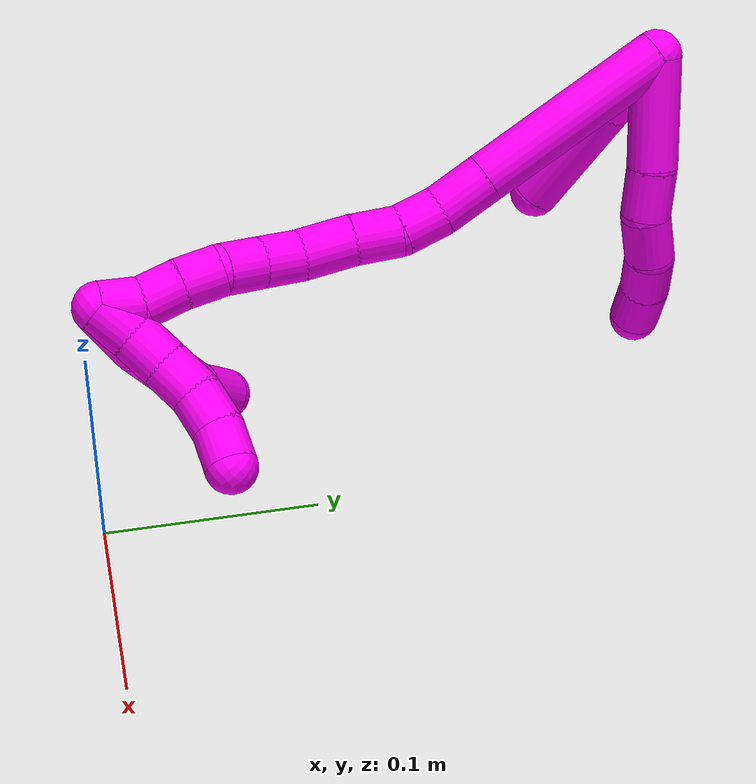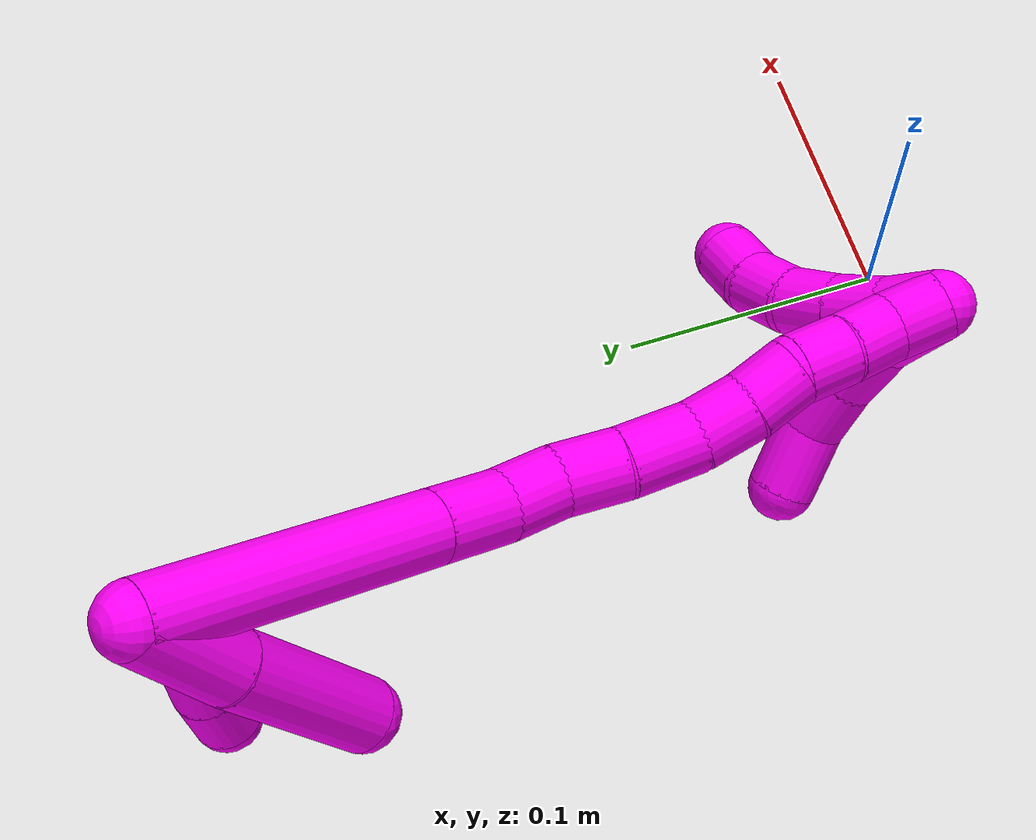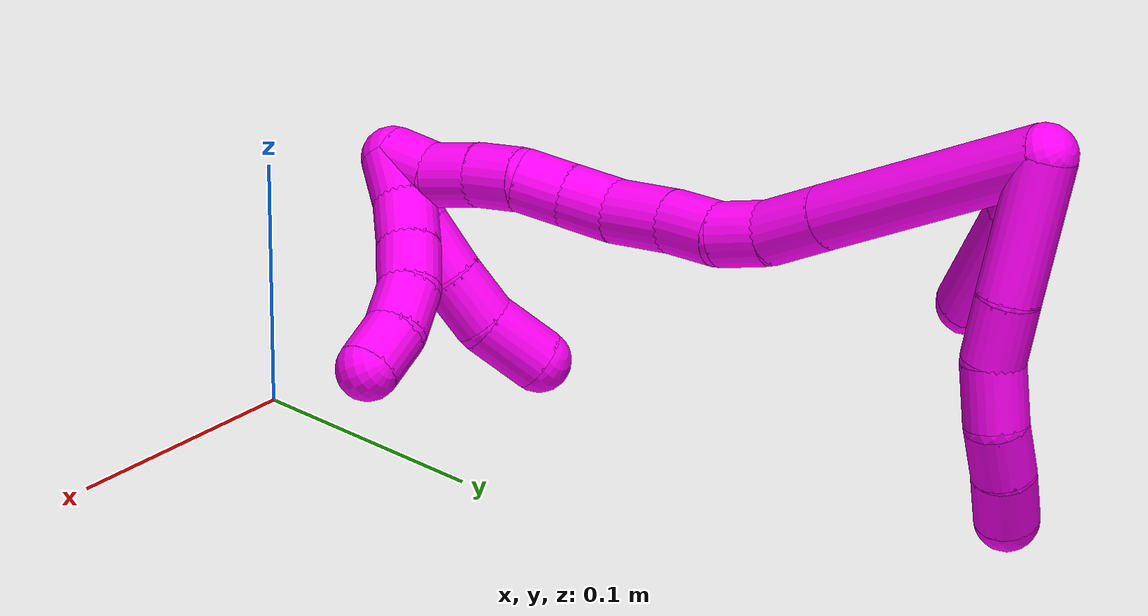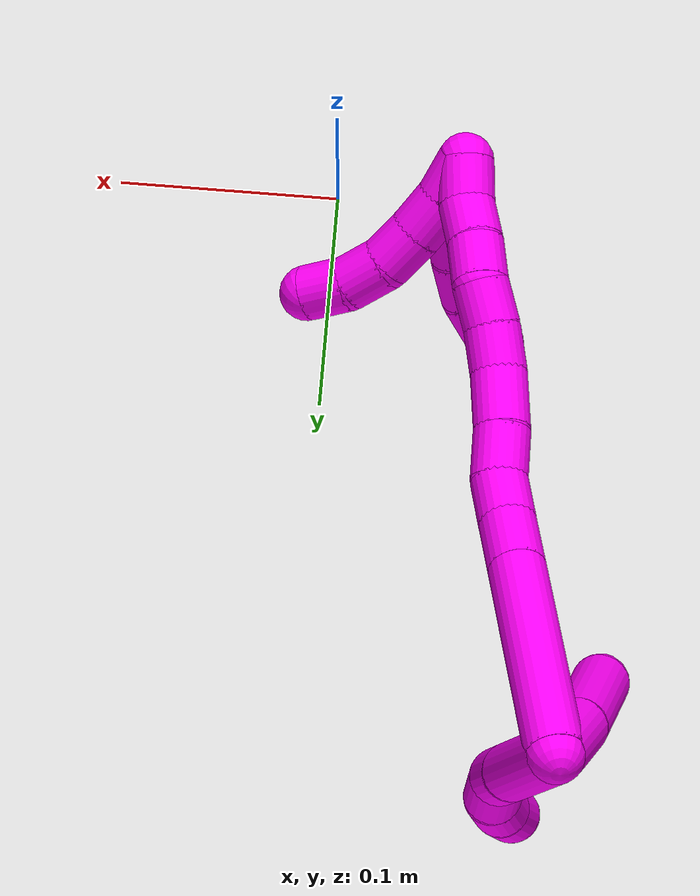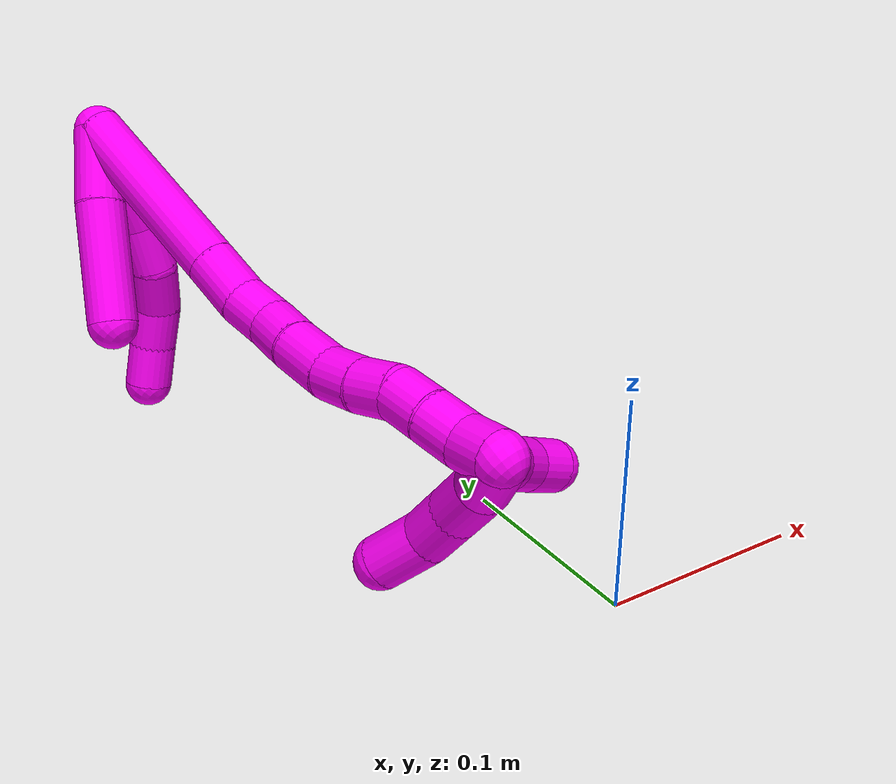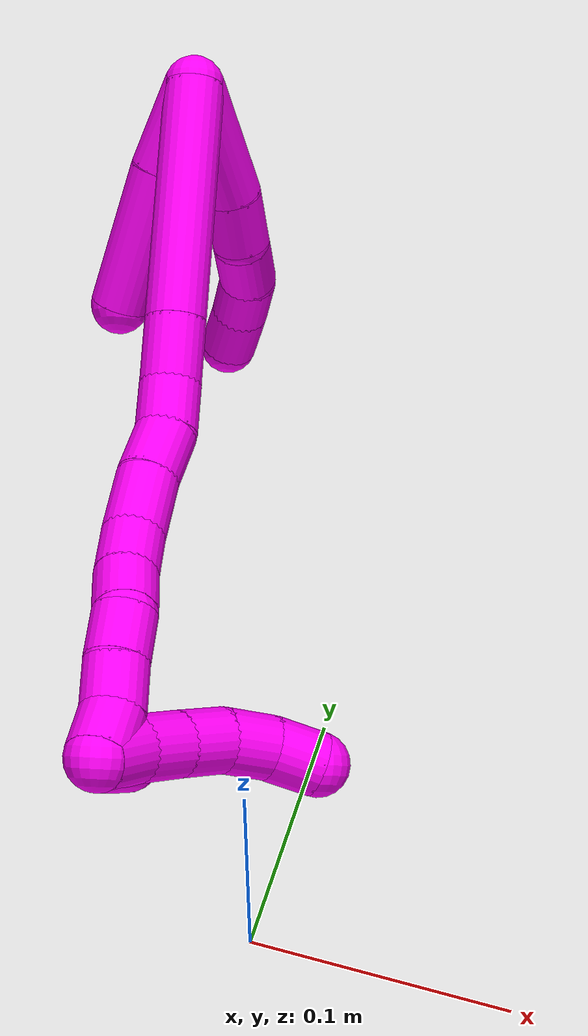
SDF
<sdf version="1.7">
 <world name="default">
  <model name="10">
   <static>0</static>
   <link name="10">
    <collision name="collision-cylinder-e_1_2_8">
     <pose>0.005485 0.021 -0.017094 -2.25401 0.199847 -0.415675</pose>
     <geometry><cylinder><radius>0.0125</radius><length>0.055255</length></cylinder></geometry>
     <surface>
      <friction><ode><mu>1.16</mu><mu2>1.16</mu2><slip1>0</slip1><slip2>0</slip2></ode></friction>
      <contact><ode><kp>1e+06</kp><kd>1</kd><max_vel>0</max_vel><min_depth>0.001</min_depth></ode></contact>
     </surface>
    </collision>
    <visual name="visual-cylinder-e_1_2_8">
     <pose>0.005485 0.021 -0.017094 -2.25401 0.199847 -0.415675</pose>
     <geometry><cylinder><radius>0.0125</radius><length>0.055255</length></cylinder></geometry>
     <material><ambient>1 0 0.964706 1</ambient></material>
    </visual>
    <collision name="collision-cylinder-e_2_8_9">
     <pose>0.011869 0.051401 -0.042567 -2.29882 0.071318 -0.158841</pose>
     <geometry><cylinder><radius>0.0125</radius><length>0.025251</length></cylinder></geometry>
     <surface>
      <friction><ode><mu>1.16</mu><mu2>1.16</mu2><slip1>0</slip1><slip2>0</slip2></ode></friction>
      <contact><ode><kp>1e+06</kp><kd>1</kd><max_vel>0</max_vel><min_depth>0.001</min_depth></ode></contact>
     </surface>
    </collision>
    <visual name="visual-cylinder-e_2_8_9">
     <pose>0.011869 0.051401 -0.042567 -2.29882 0.071318 -0.158841</pose>
     <geometry><cylinder><radius>0.0125</radius><length>0.025251</length></cylinder></geometry>
     <material><ambient>1 0 0.964706 1</ambient></material>
    </visual>
    <collision name="collision-cylinder-e_3_9_10">
     <pose>0.012832 0.071958 -0.056352 -2.02197 0.005148 -0.008214</pose>
     <geometry><cylinder><radius>0.0125</radius><length>0.024794</length></cylinder></geometry>
     <surface>
      <friction><ode><mu>1.16</mu><mu2>1.16</mu2><slip1>0</slip1><slip2>0</slip2></ode></friction>
      <contact><ode><kp>1e+06</kp><kd>1</kd><max_vel>0</max_vel><min_depth>0.001</min_depth></ode></contact>
     </surface>
    </collision>
    <visual name="visual-cylinder-e_3_9_10">
     <pose>0.012832 0.071958 -0.056352 -2.02197 0.005148 -0.008214</pose>
     <geometry><cylinder><radius>0.0125</radius><length>0.024794</length></cylinder></geometry>
     <material><ambient>1 0 0.964706 1</ambient></material>
    </visual>
    <collision name="collision-cylinder-e_4_10_11">
     <pose>0.009881 0.092327 -0.06711 -2.09716 -0.275813 0.473274</pose>
     <geometry><cylinder><radius>0.0125</radius><length>0.022146</length></cylinder></geometry>
     <surface>
      <friction><ode><mu>1.16</mu><mu2>1.16</mu2><slip1>0</slip1><slip2>0</slip2></ode></friction>
      <contact><ode><kp>1e+06</kp><kd>1</kd><max_vel>0</max_vel><min_depth>0.001</min_depth></ode></contact>
     </surface>
    </collision>
    <visual name="visual-cylinder-e_4_10_11">
     <pose>0.009881 0.092327 -0.06711 -2.09716 -0.275813 0.473274</pose>
     <geometry><cylinder><radius>0.0125</radius><length>0.022146</length></cylinder></geometry>
     <material><ambient>1 0 0.964706 1</ambient></material>
    </visual>
    <collision name="collision-cylinder-e_5_11_6">
     <pose>0.003143 0.110013 -0.078905 -2.22082 -0.336374 0.659723</pose>
     <geometry><cylinder><radius>0.0125</radius><length>0.022554</length></cylinder></geometry>
     <surface>
      <friction><ode><mu>1.16</mu><mu2>1.16</mu2><slip1>0</slip1><slip2>0</slip2></ode></friction>
      <contact><ode><kp>1e+06</kp><kd>1</kd><max_vel>0</max_vel><min_depth>0.001</min_depth></ode></contact>
     </surface>
    </collision>
    <visual name="visual-cylinder-e_5_11_6">
     <pose>0.003143 0.110013 -0.078905 -2.22082 -0.336374 0.659723</pose>
     <geometry><cylinder><radius>0.0125</radius><length>0.022554</length></cylinder></geometry>
     <material><ambient>1 0 0.964706 1</ambient></material>
    </visual>
    <collision name="collision-cylinder-e_1_2_12">
     <pose>-0.007743 0.00794 -0.015671 -2.6726 -0.415146 1.44512</pose>
     <geometry><cylinder><radius>0.0125</radius><length>0.038398</length></cylinder></geometry>
     <surface>
      <friction><ode><mu>1.16</mu><mu2>1.16</mu2><slip1>0</slip1><slip2>0</slip2></ode></friction>
      <contact><ode><kp>1e+06</kp><kd>1</kd><max_vel>0</max_vel><min_depth>0.001</min_depth></ode></contact>
     </surface>
    </collision>
    <visual name="visual-cylinder-e_1_2_12">
     <pose>-0.007743 0.00794 -0.015671 -2.6726 -0.415146 1.44512</pose>
     <geometry><cylinder><radius>0.0125</radius><length>0.038398</length></cylinder></geometry>
     <material><ambient>1 0 0.964706 1</ambient></material>
    </visual>
    <collision name="collision-cylinder-e_2_12_5">
     <pose>-0.025313 0.028807 -0.057516 -2.68288 -0.324694 1.22354</pose>
     <geometry><cylinder><radius>0.0125</radius><length>0.061602</length></cylinder></geometry>
     <surface>
      <friction><ode><mu>1.16</mu><mu2>1.16</mu2><slip1>0</slip1><slip2>0</slip2></ode></friction>
      <contact><ode><kp>1e+06</kp><kd>1</kd><max_vel>0</max_vel><min_depth>0.001</min_depth></ode></contact>
     </surface>
    </collision>
    <visual name="visual-cylinder-e_2_12_5">
     <pose>-0.025313 0.028807 -0.057516 -2.68288 -0.324694 1.22354</pose>
     <geometry><cylinder><radius>0.0125</radius><length>0.061602</length></cylinder></geometry>
     <material><ambient>1 0 0.964706 1</ambient></material>
    </visual>
    <collision name="collision-cylinder-e_1_2_13">
     <pose>0.000157 -0.005396 -0.050251 3.03461 0.003104 0.057958</pose>
     <geometry><cylinder><radius>0.0125</radius><length>0.101081</length></cylinder></geometry>
     <surface>
      <friction><ode><mu>1.16</mu><mu2>1.16</mu2><slip1>0</slip1><slip2>0</slip2></ode></friction>
      <contact><ode><kp>1e+06</kp><kd>1</kd><max_vel>0</max_vel><min_depth>0.001</min_depth></ode></contact>
     </surface>
    </collision>
    <visual name="visual-cylinder-e_1_2_13">
     <pose>0.000157 -0.005396 -0.050251 3.03461 0.003104 0.057958</pose>
     <geometry><cylinder><radius>0.0125</radius><length>0.101081</length></cylinder></geometry>
     <material><ambient>1 0 0.964706 1</ambient></material>
    </visual>
    <collision name="collision-cylinder-e_2_13_14">
     <pose>0.000357 -0.01217 -0.114003 3.03993 0.003203 0.062927</pose>
     <geometry><cylinder><radius>0.0125</radius><length>0.027142</length></cylinder></geometry>
     <surface>
      <friction><ode><mu>1.16</mu><mu2>1.16</mu2><slip1>0</slip1><slip2>0</slip2></ode></friction>
      <contact><ode><kp>1e+06</kp><kd>1</kd><max_vel>0</max_vel><min_depth>0.001</min_depth></ode></contact>
     </surface>
    </collision>
    <visual name="visual-cylinder-e_2_13_14">
     <pose>0.000357 -0.01217 -0.114003 3.03993 0.003203 0.062927</pose>
     <geometry><cylinder><radius>0.0125</radius><length>0.027142</length></cylinder></geometry>
     <material><ambient>1 0 0.964706 1</ambient></material>
    </visual>
    <collision name="collision-cylinder-e_3_14_15">
     <pose>0.000821 -0.016902 -0.137657 2.82252 0.039254 0.24279</pose>
     <geometry><cylinder><radius>0.0125</radius><length>0.021403</length></cylinder></geometry>
     <surface>
      <friction><ode><mu>1.16</mu><mu2>1.16</mu2><slip1>0</slip1><slip2>0</slip2></ode></friction>
      <contact><ode><kp>1e+06</kp><kd>1</kd><max_vel>0</max_vel><min_depth>0.001</min_depth></ode></contact>
     </surface>
    </collision>
    <visual name="visual-cylinder-e_3_14_15">
     <pose>0.000821 -0.016902 -0.137657 2.82252 0.039254 0.24279</pose>
     <geometry><cylinder><radius>0.0125</radius><length>0.021403</length></cylinder></geometry>
     <material><ambient>1 0 0.964706 1</ambient></material>
    </visual>
    <collision name="collision-cylinder-e_4_15_16">
     <pose>-0.000687 -0.025817 -0.157661 2.62771 -0.168792 -0.62298</pose>
     <geometry><cylinder><radius>0.0125</radius><length>0.02295</length></cylinder></geometry>
     <surface>
      <friction><ode><mu>1.16</mu><mu2>1.16</mu2><slip1>0</slip1><slip2>0</slip2></ode></friction>
      <contact><ode><kp>1e+06</kp><kd>1</kd><max_vel>0</max_vel><min_depth>0.001</min_depth></ode></contact>
     </surface>
    </collision>
    <visual name="visual-cylinder-e_4_15_16">
     <pose>-0.000687 -0.025817 -0.157661 2.62771 -0.168792 -0.62298</pose>
     <geometry><cylinder><radius>0.0125</radius><length>0.02295</length></cylinder></geometry>
     <material><ambient>1 0 0.964706 1</ambient></material>
    </visual>
    <collision name="collision-cylinder-e_5_16_17">
     <pose>-0.003445 -0.037379 -0.179386 2.67357 -0.062301 -0.259962</pose>
     <geometry><cylinder><radius>0.0125</radius><length>0.02666</length></cylinder></geometry>
     <surface>
      <friction><ode><mu>1.16</mu><mu2>1.16</mu2><slip1>0</slip1><slip2>0</slip2></ode></friction>
      <contact><ode><kp>1e+06</kp><kd>1</kd><max_vel>0</max_vel><min_depth>0.001</min_depth></ode></contact>
     </surface>
    </collision>
    <visual name="visual-cylinder-e_5_16_17">
     <pose>-0.003445 -0.037379 -0.179386 2.67357 -0.062301 -0.259962</pose>
     <geometry><cylinder><radius>0.0125</radius><length>0.02666</length></cylinder></geometry>
     <material><ambient>1 0 0.964706 1</ambient></material>
    </visual>
    <collision name="collision-cylinder-e_6_17_18">
     <pose>-0.003774 -0.049629 -0.199387 2.48615 0.048767 0.143223</pose>
     <geometry><cylinder><radius>0.0125</radius><length>0.020527</length></cylinder></geometry>
     <surface>
      <friction><ode><mu>1.16</mu><mu2>1.16</mu2><slip1>0</slip1><slip2>0</slip2></ode></friction>
      <contact><ode><kp>1e+06</kp><kd>1</kd><max_vel>0</max_vel><min_depth>0.001</min_depth></ode></contact>
     </surface>
    </collision>
    <visual name="visual-cylinder-e_6_17_18">
     <pose>-0.003774 -0.049629 -0.199387 2.48615 0.048767 0.143223</pose>
     <geometry><cylinder><radius>0.0125</radius><length>0.020527</length></cylinder></geometry>
     <material><ambient>1 0 0.964706 1</ambient></material>
    </visual>
    <collision name="collision-cylinder-e_7_18_19">
     <pose>-0.001582 -0.062393 -0.21498 2.42408 0.169084 0.444518</pose>
     <geometry><cylinder><radius>0.0125</radius><length>0.020105</length></cylinder></geometry>
     <surface>
      <friction><ode><mu>1.16</mu><mu2>1.16</mu2><slip1>0</slip1><slip2>0</slip2></ode></friction>
      <contact><ode><kp>1e+06</kp><kd>1</kd><max_vel>0</max_vel><min_depth>0.001</min_depth></ode></contact>
     </surface>
    </collision>
    <visual name="visual-cylinder-e_7_18_19">
     <pose>-0.001582 -0.062393 -0.21498 2.42408 0.169084 0.444518</pose>
     <geometry><cylinder><radius>0.0125</radius><length>0.020105</length></cylinder></geometry>
     <material><ambient>1 0 0.964706 1</ambient></material>
    </visual>
    <collision name="collision-cylinder-e_8_19_20">
     <pose>4.4e-05 -0.073179 -0.231528 2.70211 -0.006524 -0.029209</pose>
     <geometry><cylinder><radius>0.0125</radius><length>0.020072</length></cylinder></geometry>
     <surface>
      <friction><ode><mu>1.16</mu><mu2>1.16</mu2><slip1>0</slip1><slip2>0</slip2></ode></friction>
      <contact><ode><kp>1e+06</kp><kd>1</kd><max_vel>0</max_vel><min_depth>0.001</min_depth></ode></contact>
     </surface>
    </collision>
    <visual name="visual-cylinder-e_8_19_20">
     <pose>4.4e-05 -0.073179 -0.231528 2.70211 -0.006524 -0.029209</pose>
     <geometry><cylinder><radius>0.0125</radius><length>0.020072</length></cylinder></geometry>
     <material><ambient>1 0 0.964706 1</ambient></material>
    </visual>
    <collision name="collision-cylinder-e_9_20_21">
     <pose>0.000634 -0.080925 -0.249976 2.7862 0.065554 0.361172</pose>
     <geometry><cylinder><radius>0.0125</radius><length>0.020023</length></cylinder></geometry>
     <surface>
      <friction><ode><mu>1.16</mu><mu2>1.16</mu2><slip1>0</slip1><slip2>0</slip2></ode></friction>
      <contact><ode><kp>1e+06</kp><kd>1</kd><max_vel>0</max_vel><min_depth>0.001</min_depth></ode></contact>
     </surface>
    </collision>
    <visual name="visual-cylinder-e_9_20_21">
     <pose>0.000634 -0.080925 -0.249976 2.7862 0.065554 0.361172</pose>
     <geometry><cylinder><radius>0.0125</radius><length>0.020023</length></cylinder></geometry>
     <material><ambient>1 0 0.964706 1</ambient></material>
    </visual>
    <collision name="collision-cylinder-e_10_21_1">
     <pose>0.000564 -0.090569 -0.267203 2.47632 -0.072537 -0.209288</pose>
     <geometry><cylinder><radius>0.0125</radius><length>0.020037</length></cylinder></geometry>
     <surface>
      <friction><ode><mu>1.16</mu><mu2>1.16</mu2><slip1>0</slip1><slip2>0</slip2></ode></friction>
      <contact><ode><kp>1e+06</kp><kd>1</kd><max_vel>0</max_vel><min_depth>0.001</min_depth></ode></contact>
     </surface>
    </collision>
    <visual name="visual-cylinder-e_10_21_1">
     <pose>0.000564 -0.090569 -0.267203 2.47632 -0.072537 -0.209288</pose>
     <geometry><cylinder><radius>0.0125</radius><length>0.020037</length></cylinder></geometry>
     <material><ambient>1 0 0.964706 1</ambient></material>
    </visual>
    <collision name="collision-cylinder-e_1_1_22">
     <pose>0.004658 -0.088159 -0.273278 -1.36556 0.502933 -0.411938</pose>
     <geometry><cylinder><radius>0.0125</radius><length>0.02</length></cylinder></geometry>
     <surface>
      <friction><ode><mu>1.16</mu><mu2>1.16</mu2><slip1>0</slip1><slip2>0</slip2></ode></friction>
      <contact><ode><kp>1e+06</kp><kd>1</kd><max_vel>0</max_vel><min_depth>0.001</min_depth></ode></contact>
     </surface>
    </collision>
    <visual name="visual-cylinder-e_1_1_22">
     <pose>0.004658 -0.088159 -0.273278 -1.36556 0.502933 -0.411938</pose>
     <geometry><cylinder><radius>0.0125</radius><length>0.02</length></cylinder></geometry>
     <material><ambient>1 0 0.964706 1</ambient></material>
    </visual>
    <collision name="collision-cylinder-e_2_22_23">
     <pose>0.015685 -0.071837 -0.270271 -1.41435 0.6697 -0.578085</pose>
     <geometry><cylinder><radius>0.0125</radius><length>0.02</length></cylinder></geometry>
     <surface>
      <friction><ode><mu>1.16</mu><mu2>1.16</mu2><slip1>0</slip1><slip2>0</slip2></ode></friction>
      <contact><ode><kp>1e+06</kp><kd>1</kd><max_vel>0</max_vel><min_depth>0.001</min_depth></ode></contact>
     </surface>
    </collision>
    <visual name="visual-cylinder-e_2_22_23">
     <pose>0.015685 -0.071837 -0.270271 -1.41435 0.6697 -0.578085</pose>
     <geometry><cylinder><radius>0.0125</radius><length>0.02</length></cylinder></geometry>
     <material><ambient>1 0 0.964706 1</ambient></material>
    </visual>
    <collision name="collision-cylinder-e_3_23_24">
     <pose>0.028759 -0.056911 -0.267916 -1.41425 0.756784 -0.654979</pose>
     <geometry><cylinder><radius>0.0125</radius><length>0.02</length></cylinder></geometry>
     <surface>
      <friction><ode><mu>1.16</mu><mu2>1.16</mu2><slip1>0</slip1><slip2>0</slip2></ode></friction>
      <contact><ode><kp>1e+06</kp><kd>1</kd><max_vel>0</max_vel><min_depth>0.001</min_depth></ode></contact>
     </surface>
    </collision>
    <visual name="visual-cylinder-e_3_23_24">
     <pose>0.028759 -0.056911 -0.267916 -1.41425 0.756784 -0.654979</pose>
     <geometry><cylinder><radius>0.0125</radius><length>0.02</length></cylinder></geometry>
     <material><ambient>1 0 0.964706 1</ambient></material>
    </visual>
    <collision name="collision-cylinder-e_4_24_25">
     <pose>0.043694 -0.043904 -0.26775 -1.73541 0.939052 -1.07879</pose>
     <geometry><cylinder><radius>0.0125</radius><length>0.02</length></cylinder></geometry>
     <surface>
      <friction><ode><mu>1.16</mu><mu2>1.16</mu2><slip1>0</slip1><slip2>0</slip2></ode></friction>
      <contact><ode><kp>1e+06</kp><kd>1</kd><max_vel>0</max_vel><min_depth>0.001</min_depth></ode></contact>
     </surface>
    </collision>
    <visual name="visual-cylinder-e_4_24_25">
     <pose>0.043694 -0.043904 -0.26775 -1.73541 0.939052 -1.07879</pose>
     <geometry><cylinder><radius>0.0125</radius><length>0.02</length></cylinder></geometry>
     <material><ambient>1 0 0.964706 1</ambient></material>
    </visual>
    <collision name="collision-cylinder-e_5_25_4">
     <pose>0.060578 -0.034152 -0.271346 -2.1608 1.07878 -1.68494</pose>
     <geometry><cylinder><radius>0.0125</radius><length>0.02</length></cylinder></geometry>
     <surface>
      <friction><ode><mu>1.16</mu><mu2>1.16</mu2><slip1>0</slip1><slip2>0</slip2></ode></friction>
      <contact><ode><kp>1e+06</kp><kd>1</kd><max_vel>0</max_vel><min_depth>0.001</min_depth></ode></contact>
     </surface>
    </collision>
    <visual name="visual-cylinder-e_5_25_4">
     <pose>0.060578 -0.034152 -0.271346 -2.1608 1.07878 -1.68494</pose>
     <geometry><cylinder><radius>0.0125</radius><length>0.02</length></cylinder></geometry>
     <material><ambient>1 0 0.964706 1</ambient></material>
    </visual>
    <collision name="collision-cylinder-e_1_1_26">
     <pose>0.002147 -0.083209 -0.27505 -1.56979 0.169074 -0.168905</pose>
     <geometry><cylinder><radius>0.0125</radius><length>0.027447</length></cylinder></geometry>
     <surface>
      <friction><ode><mu>1.16</mu><mu2>1.16</mu2><slip1>0</slip1><slip2>0</slip2></ode></friction>
      <contact><ode><kp>1e+06</kp><kd>1</kd><max_vel>0</max_vel><min_depth>0.001</min_depth></ode></contact>
     </surface>
    </collision>
    <visual name="visual-cylinder-e_1_1_26">
     <pose>0.002147 -0.083209 -0.27505 -1.56979 0.169074 -0.168905</pose>
     <geometry><cylinder><radius>0.0125</radius><length>0.027447</length></cylinder></geometry>
     <material><ambient>1 0 0.964706 1</ambient></material>
    </visual>
    <collision name="collision-cylinder-e_2_26_27">
     <pose>0.003138 -0.057896 -0.273919 -1.47622 -0.110926 0.100919</pose>
     <geometry><cylinder><radius>0.0125</radius><length>0.023821</length></cylinder></geometry>
     <surface>
      <friction><ode><mu>1.16</mu><mu2>1.16</mu2><slip1>0</slip1><slip2>0</slip2></ode></friction>
      <contact><ode><kp>1e+06</kp><kd>1</kd><max_vel>0</max_vel><min_depth>0.001</min_depth></ode></contact>
     </surface>
    </collision>
    <visual name="visual-cylinder-e_2_26_27">
     <pose>0.003138 -0.057896 -0.273919 -1.47622 -0.110926 0.100919</pose>
     <geometry><cylinder><radius>0.0125</radius><length>0.023821</length></cylinder></geometry>
     <material><ambient>1 0 0.964706 1</ambient></material>
    </visual>
    <collision name="collision-cylinder-e_3_27_28">
     <pose>-0.000757 -0.035409 -0.271957 -1.49214 -0.235476 0.217792</pose>
     <geometry><cylinder><radius>0.0125</radius><length>0.022082</length></cylinder></geometry>
     <surface>
      <friction><ode><mu>1.16</mu><mu2>1.16</mu2><slip1>0</slip1><slip2>0</slip2></ode></friction>
      <contact><ode><kp>1e+06</kp><kd>1</kd><max_vel>0</max_vel><min_depth>0.001</min_depth></ode></contact>
     </surface>
    </collision>
    <visual name="visual-cylinder-e_3_27_28">
     <pose>-0.000757 -0.035409 -0.271957 -1.49214 -0.235476 0.217792</pose>
     <geometry><cylinder><radius>0.0125</radius><length>0.022082</length></cylinder></geometry>
     <material><ambient>1 0 0.964706 1</ambient></material>
    </visual>
    <collision name="collision-cylinder-e_4_28_3">
     <pose>-0.009695 -0.013332 -0.268337 -1.33137 -0.497789 0.393991</pose>
     <geometry><cylinder><radius>0.0125</radius><length>0.02665</length></cylinder></geometry>
     <surface>
      <friction><ode><mu>1.16</mu><mu2>1.16</mu2><slip1>0</slip1><slip2>0</slip2></ode></friction>
      <contact><ode><kp>1e+06</kp><kd>1</kd><max_vel>0</max_vel><min_depth>0.001</min_depth></ode></contact>
     </surface>
    </collision>
    <visual name="visual-cylinder-e_4_28_3">
     <pose>-0.009695 -0.013332 -0.268337 -1.33137 -0.497789 0.393991</pose>
     <geometry><cylinder><radius>0.0125</radius><length>0.02665</length></cylinder></geometry>
     <material><ambient>1 0 0.964706 1</ambient></material>
    </visual>
    <collision name="collision-sphere-3">
     <pose>-0.016057 -0.001958 -0.265561 0 -0 0</pose>
     <geometry><sphere><radius>0.0125</radius></sphere></geometry>
     <surface>
      <friction><ode><mu>1.16</mu><mu2>1.16</mu2><slip1>0</slip1><slip2>0</slip2></ode></friction>
      <contact><ode><kp>1e+06</kp><kd>1</kd><max_vel>0</max_vel><min_depth>0.001</min_depth></ode></contact>
     </surface>
    </collision>
    <visual name="visual-sphere-3">
     <pose>-0.016057 -0.001958 -0.265561 0 -0 0</pose>
     <geometry><sphere><radius>0.0125</radius></sphere></geometry>
     <material><ambient>1 0 0.964706 1</ambient></material>
    </visual>
    <collision name="collision-sphere-28">
     <pose>-0.003332 -0.024706 -0.271114 0 -0 0</pose>
     <geometry><sphere><radius>0.0125</radius></sphere></geometry>
     <surface>
      <friction><ode><mu>1.16</mu><mu2>1.16</mu2><slip1>0</slip1><slip2>0</slip2></ode></friction>
      <contact><ode><kp>1e+06</kp><kd>1</kd><max_vel>0</max_vel><min_depth>0.001</min_depth></ode></contact>
     </surface>
    </collision>
    <visual name="visual-sphere-28">
     <pose>-0.003332 -0.024706 -0.271114 0 -0 0</pose>
     <geometry><sphere><radius>0.0125</radius></sphere></geometry>
     <material><ambient>1 0 0.964706 1</ambient></material>
    </visual>
    <collision name="collision-sphere-27">
     <pose>0.001819 -0.046112 -0.272801 0 -0 0</pose>
     <geometry><sphere><radius>0.0125</radius></sphere></geometry>
     <surface>
      <friction><ode><mu>1.16</mu><mu2>1.16</mu2><slip1>0</slip1><slip2>0</slip2></ode></friction>
      <contact><ode><kp>1e+06</kp><kd>1</kd><max_vel>0</max_vel><min_depth>0.001</min_depth></ode></contact>
     </surface>
    </collision>
    <visual name="visual-sphere-27">
     <pose>0.001819 -0.046112 -0.272801 0 -0 0</pose>
     <geometry><sphere><radius>0.0125</radius></sphere></geometry>
     <material><ambient>1 0 0.964706 1</ambient></material>
    </visual>
    <collision name="collision-sphere-26">
     <pose>0.004456 -0.069681 -0.275037 0 -0 0</pose>
     <geometry><sphere><radius>0.0125</radius></sphere></geometry>
     <surface>
      <friction><ode><mu>1.16</mu><mu2>1.16</mu2><slip1>0</slip1><slip2>0</slip2></ode></friction>
      <contact><ode><kp>1e+06</kp><kd>1</kd><max_vel>0</max_vel><min_depth>0.001</min_depth></ode></contact>
     </surface>
    </collision>
    <visual name="visual-sphere-26">
     <pose>0.004456 -0.069681 -0.275037 0 -0 0</pose>
     <geometry><sphere><radius>0.0125</radius></sphere></geometry>
     <material><ambient>1 0 0.964706 1</ambient></material>
    </visual>
    <collision name="collision-sphere-4">
     <pose>0.069392 -0.030227 -0.273975 0 -0 0</pose>
     <geometry><sphere><radius>0.0125</radius></sphere></geometry>
     <surface>
      <friction><ode><mu>1.16</mu><mu2>1.16</mu2><slip1>0</slip1><slip2>0</slip2></ode></friction>
      <contact><ode><kp>1e+06</kp><kd>1</kd><max_vel>0</max_vel><min_depth>0.001</min_depth></ode></contact>
     </surface>
    </collision>
    <visual name="visual-sphere-4">
     <pose>0.069392 -0.030227 -0.273975 0 -0 0</pose>
     <geometry><sphere><radius>0.0125</radius></sphere></geometry>
     <material><ambient>1 0 0.964706 1</ambient></material>
    </visual>
    <collision name="collision-sphere-25">
     <pose>0.051764 -0.038078 -0.268718 0 -0 0</pose>
     <geometry><sphere><radius>0.0125</radius></sphere></geometry>
     <surface>
      <friction><ode><mu>1.16</mu><mu2>1.16</mu2><slip1>0</slip1><slip2>0</slip2></ode></friction>
      <contact><ode><kp>1e+06</kp><kd>1</kd><max_vel>0</max_vel><min_depth>0.001</min_depth></ode></contact>
     </surface>
    </collision>
    <visual name="visual-sphere-25">
     <pose>0.051764 -0.038078 -0.268718 0 -0 0</pose>
     <geometry><sphere><radius>0.0125</radius></sphere></geometry>
     <material><ambient>1 0 0.964706 1</ambient></material>
    </visual>
    <collision name="collision-sphere-24">
     <pose>0.035624 -0.049729 -0.266783 0 -0 0</pose>
     <geometry><sphere><radius>0.0125</radius></sphere></geometry>
     <surface>
      <friction><ode><mu>1.16</mu><mu2>1.16</mu2><slip1>0</slip1><slip2>0</slip2></ode></friction>
      <contact><ode><kp>1e+06</kp><kd>1</kd><max_vel>0</max_vel><min_depth>0.001</min_depth></ode></contact>
     </surface>
    </collision>
    <visual name="visual-sphere-24">
     <pose>0.035624 -0.049729 -0.266783 0 -0 0</pose>
     <geometry><sphere><radius>0.0125</radius></sphere></geometry>
     <material><ambient>1 0 0.964706 1</ambient></material>
    </visual>
    <collision name="collision-sphere-23">
     <pose>0.021893 -0.064092 -0.26905 0 -0 0</pose>
     <geometry><sphere><radius>0.0125</radius></sphere></geometry>
     <surface>
      <friction><ode><mu>1.16</mu><mu2>1.16</mu2><slip1>0</slip1><slip2>0</slip2></ode></friction>
      <contact><ode><kp>1e+06</kp><kd>1</kd><max_vel>0</max_vel><min_depth>0.001</min_depth></ode></contact>
     </surface>
    </collision>
    <visual name="visual-sphere-23">
     <pose>0.021893 -0.064092 -0.26905 0 -0 0</pose>
     <geometry><sphere><radius>0.0125</radius></sphere></geometry>
     <material><ambient>1 0 0.964706 1</ambient></material>
    </visual>
    <collision name="collision-sphere-22">
     <pose>0.009478 -0.079581 -0.271493 0 -0 0</pose>
     <geometry><sphere><radius>0.0125</radius></sphere></geometry>
     <surface>
      <friction><ode><mu>1.16</mu><mu2>1.16</mu2><slip1>0</slip1><slip2>0</slip2></ode></friction>
      <contact><ode><kp>1e+06</kp><kd>1</kd><max_vel>0</max_vel><min_depth>0.001</min_depth></ode></contact>
     </surface>
    </collision>
    <visual name="visual-sphere-22">
     <pose>0.009478 -0.079581 -0.271493 0 -0 0</pose>
     <geometry><sphere><radius>0.0125</radius></sphere></geometry>
     <material><ambient>1 0 0.964706 1</ambient></material>
    </visual>
    <collision name="collision-sphere-1">
     <pose>-0.000162 -0.096737 -0.275064 0 -0 0</pose>
     <geometry><sphere><radius>0.0125</radius></sphere></geometry>
     <surface>
      <friction><ode><mu>1.16</mu><mu2>1.16</mu2><slip1>0</slip1><slip2>0</slip2></ode></friction>
      <contact><ode><kp>1e+06</kp><kd>1</kd><max_vel>0</max_vel><min_depth>0.001</min_depth></ode></contact>
     </surface>
    </collision>
    <visual name="visual-sphere-1">
     <pose>-0.000162 -0.096737 -0.275064 0 -0 0</pose>
     <geometry><sphere><radius>0.0125</radius></sphere></geometry>
     <material><ambient>1 0 0.964706 1</ambient></material>
    </visual>
    <collision name="collision-sphere-21">
     <pose>0.00129 -0.084401 -0.259341 0 -0 0</pose>
     <geometry><sphere><radius>0.0125</radius></sphere></geometry>
     <surface>
      <friction><ode><mu>1.16</mu><mu2>1.16</mu2><slip1>0</slip1><slip2>0</slip2></ode></friction>
      <contact><ode><kp>1e+06</kp><kd>1</kd><max_vel>0</max_vel><min_depth>0.001</min_depth></ode></contact>
     </surface>
    </collision>
    <visual name="visual-sphere-21">
     <pose>0.00129 -0.084401 -0.259341 0 -0 0</pose>
     <geometry><sphere><radius>0.0125</radius></sphere></geometry>
     <material><ambient>1 0 0.964706 1</ambient></material>
    </visual>
    <collision name="collision-sphere-6">
     <pose>-0.000579 0.118487 -0.085348 0 -0 0</pose>
     <geometry><sphere><radius>0.0125</radius></sphere></geometry>
     <surface>
      <friction><ode><mu>1.16</mu><mu2>1.16</mu2><slip1>0</slip1><slip2>0</slip2></ode></friction>
      <contact><ode><kp>1e+06</kp><kd>1</kd><max_vel>0</max_vel><min_depth>0.001</min_depth></ode></contact>
     </surface>
    </collision>
    <visual name="visual-sphere-6">
     <pose>-0.000579 0.118487 -0.085348 0 -0 0</pose>
     <geometry><sphere><radius>0.0125</radius></sphere></geometry>
     <material><ambient>1 0 0.964706 1</ambient></material>
    </visual>
    <collision name="collision-sphere-11">
     <pose>0.006865 0.101539 -0.072463 0 -0 0</pose>
     <geometry><sphere><radius>0.0125</radius></sphere></geometry>
     <surface>
      <friction><ode><mu>1.16</mu><mu2>1.16</mu2><slip1>0</slip1><slip2>0</slip2></ode></friction>
      <contact><ode><kp>1e+06</kp><kd>1</kd><max_vel>0</max_vel><min_depth>0.001</min_depth></ode></contact>
     </surface>
    </collision>
    <visual name="visual-sphere-11">
     <pose>0.006865 0.101539 -0.072463 0 -0 0</pose>
     <geometry><sphere><radius>0.0125</radius></sphere></geometry>
     <material><ambient>1 0 0.964706 1</ambient></material>
    </visual>
    <collision name="collision-sphere-10">
     <pose>0.012896 0.083114 -0.061758 0 -0 0</pose>
     <geometry><sphere><radius>0.0125</radius></sphere></geometry>
     <surface>
      <friction><ode><mu>1.16</mu><mu2>1.16</mu2><slip1>0</slip1><slip2>0</slip2></ode></friction>
      <contact><ode><kp>1e+06</kp><kd>1</kd><max_vel>0</max_vel><min_depth>0.001</min_depth></ode></contact>
     </surface>
    </collision>
    <visual name="visual-sphere-10">
     <pose>0.012896 0.083114 -0.061758 0 -0 0</pose>
     <geometry><sphere><radius>0.0125</radius></sphere></geometry>
     <material><ambient>1 0 0.964706 1</ambient></material>
    </visual>
    <collision name="collision-sphere-9">
     <pose>0.012768 0.060802 -0.050947 0 -0 0</pose>
     <geometry><sphere><radius>0.0125</radius></sphere></geometry>
     <surface>
      <friction><ode><mu>1.16</mu><mu2>1.16</mu2><slip1>0</slip1><slip2>0</slip2></ode></friction>
      <contact><ode><kp>1e+06</kp><kd>1</kd><max_vel>0</max_vel><min_depth>0.001</min_depth></ode></contact>
     </surface>
    </collision>
    <visual name="visual-sphere-9">
     <pose>0.012768 0.060802 -0.050947 0 -0 0</pose>
     <geometry><sphere><radius>0.0125</radius></sphere></geometry>
     <material><ambient>1 0 0.964706 1</ambient></material>
    </visual>
    <collision name="collision-sphere-2">
     <geometry><sphere><radius>0.0125</radius></sphere></geometry>
     <surface>
      <friction><ode><mu>1.16</mu><mu2>1.16</mu2><slip1>0</slip1><slip2>0</slip2></ode></friction>
      <contact><ode><kp>1e+06</kp><kd>1</kd><max_vel>0</max_vel><min_depth>0.001</min_depth></ode></contact>
     </surface>
    </collision>
    <visual name="visual-sphere-2">
     <geometry><sphere><radius>0.0125</radius></sphere></geometry>
     <material><ambient>1 0 0.964706 1</ambient></material>
    </visual>
    <collision name="collision-sphere-19">
     <pose>0.000109 -0.068909 -0.222446 0 -0 0</pose>
     <geometry><sphere><radius>0.0125</radius></sphere></geometry>
     <surface>
      <friction><ode><mu>1.16</mu><mu2>1.16</mu2><slip1>0</slip1><slip2>0</slip2></ode></friction>
      <contact><ode><kp>1e+06</kp><kd>1</kd><max_vel>0</max_vel><min_depth>0.001</min_depth></ode></contact>
     </surface>
    </collision>
    <visual name="visual-sphere-19">
     <pose>0.000109 -0.068909 -0.222446 0 -0 0</pose>
     <geometry><sphere><radius>0.0125</radius></sphere></geometry>
     <material><ambient>1 0 0.964706 1</ambient></material>
    </visual>
    <collision name="collision-sphere-8">
     <pose>0.010969 0.042 -0.034187 0 -0 0</pose>
     <geometry><sphere><radius>0.0125</radius></sphere></geometry>
     <surface>
      <friction><ode><mu>1.16</mu><mu2>1.16</mu2><slip1>0</slip1><slip2>0</slip2></ode></friction>
      <contact><ode><kp>1e+06</kp><kd>1</kd><max_vel>0</max_vel><min_depth>0.001</min_depth></ode></contact>
     </surface>
    </collision>
    <visual name="visual-sphere-8">
     <pose>0.010969 0.042 -0.034187 0 -0 0</pose>
     <geometry><sphere><radius>0.0125</radius></sphere></geometry>
     <material><ambient>1 0 0.964706 1</ambient></material>
    </visual>
    <collision name="collision-sphere-12">
     <pose>-0.015487 0.015881 -0.031342 0 -0 0</pose>
     <geometry><sphere><radius>0.0125</radius></sphere></geometry>
     <surface>
      <friction><ode><mu>1.16</mu><mu2>1.16</mu2><slip1>0</slip1><slip2>0</slip2></ode></friction>
      <contact><ode><kp>1e+06</kp><kd>1</kd><max_vel>0</max_vel><min_depth>0.001</min_depth></ode></contact>
     </surface>
    </collision>
    <visual name="visual-sphere-12">
     <pose>-0.015487 0.015881 -0.031342 0 -0 0</pose>
     <geometry><sphere><radius>0.0125</radius></sphere></geometry>
     <material><ambient>1 0 0.964706 1</ambient></material>
    </visual>
    <collision name="collision-sphere-5">
     <pose>-0.035139 0.041733 -0.08369 0 -0 0</pose>
     <geometry><sphere><radius>0.0125</radius></sphere></geometry>
     <surface>
      <friction><ode><mu>1.16</mu><mu2>1.16</mu2><slip1>0</slip1><slip2>0</slip2></ode></friction>
      <contact><ode><kp>1e+06</kp><kd>1</kd><max_vel>0</max_vel><min_depth>0.001</min_depth></ode></contact>
     </surface>
    </collision>
    <visual name="visual-sphere-5">
     <pose>-0.035139 0.041733 -0.08369 0 -0 0</pose>
     <geometry><sphere><radius>0.0125</radius></sphere></geometry>
     <material><ambient>1 0 0.964706 1</ambient></material>
    </visual>
    <collision name="collision-sphere-13">
     <pose>0.000314 -0.010793 -0.100502 0 -0 0</pose>
     <geometry><sphere><radius>0.0125</radius></sphere></geometry>
     <surface>
      <friction><ode><mu>1.16</mu><mu2>1.16</mu2><slip1>0</slip1><slip2>0</slip2></ode></friction>
      <contact><ode><kp>1e+06</kp><kd>1</kd><max_vel>0</max_vel><min_depth>0.001</min_depth></ode></contact>
     </surface>
    </collision>
    <visual name="visual-sphere-13">
     <pose>0.000314 -0.010793 -0.100502 0 -0 0</pose>
     <geometry><sphere><radius>0.0125</radius></sphere></geometry>
     <material><ambient>1 0 0.964706 1</ambient></material>
    </visual>
    <collision name="collision-sphere-14">
     <pose>0.000401 -0.013548 -0.127504 0 -0 0</pose>
     <geometry><sphere><radius>0.0125</radius></sphere></geometry>
     <surface>
      <friction><ode><mu>1.16</mu><mu2>1.16</mu2><slip1>0</slip1><slip2>0</slip2></ode></friction>
      <contact><ode><kp>1e+06</kp><kd>1</kd><max_vel>0</max_vel><min_depth>0.001</min_depth></ode></contact>
     </surface>
    </collision>
    <visual name="visual-sphere-14">
     <pose>0.000401 -0.013548 -0.127504 0 -0 0</pose>
     <geometry><sphere><radius>0.0125</radius></sphere></geometry>
     <material><ambient>1 0 0.964706 1</ambient></material>
    </visual>
    <collision name="collision-sphere-15">
     <pose>0.001241 -0.020256 -0.14781 0 -0 0</pose>
     <geometry><sphere><radius>0.0125</radius></sphere></geometry>
     <surface>
      <friction><ode><mu>1.16</mu><mu2>1.16</mu2><slip1>0</slip1><slip2>0</slip2></ode></friction>
      <contact><ode><kp>1e+06</kp><kd>1</kd><max_vel>0</max_vel><min_depth>0.001</min_depth></ode></contact>
     </surface>
    </collision>
    <visual name="visual-sphere-15">
     <pose>0.001241 -0.020256 -0.14781 0 -0 0</pose>
     <geometry><sphere><radius>0.0125</radius></sphere></geometry>
     <material><ambient>1 0 0.964706 1</ambient></material>
    </visual>
    <collision name="collision-sphere-16">
     <pose>-0.002615 -0.031377 -0.167512 0 -0 0</pose>
     <geometry><sphere><radius>0.0125</radius></sphere></geometry>
     <surface>
      <friction><ode><mu>1.16</mu><mu2>1.16</mu2><slip1>0</slip1><slip2>0</slip2></ode></friction>
      <contact><ode><kp>1e+06</kp><kd>1</kd><max_vel>0</max_vel><min_depth>0.001</min_depth></ode></contact>
     </surface>
    </collision>
    <visual name="visual-sphere-16">
     <pose>-0.002615 -0.031377 -0.167512 0 -0 0</pose>
     <geometry><sphere><radius>0.0125</radius></sphere></geometry>
     <material><ambient>1 0 0.964706 1</ambient></material>
    </visual>
    <collision name="collision-sphere-17">
     <pose>-0.004275 -0.043381 -0.191259 0 -0 0</pose>
     <geometry><sphere><radius>0.0125</radius></sphere></geometry>
     <surface>
      <friction><ode><mu>1.16</mu><mu2>1.16</mu2><slip1>0</slip1><slip2>0</slip2></ode></friction>
      <contact><ode><kp>1e+06</kp><kd>1</kd><max_vel>0</max_vel><min_depth>0.001</min_depth></ode></contact>
     </surface>
    </collision>
    <visual name="visual-sphere-17">
     <pose>-0.004275 -0.043381 -0.191259 0 -0 0</pose>
     <geometry><sphere><radius>0.0125</radius></sphere></geometry>
     <material><ambient>1 0 0.964706 1</ambient></material>
    </visual>
    <collision name="collision-sphere-18">
     <pose>-0.003274 -0.055878 -0.207514 0 -0 0</pose>
     <geometry><sphere><radius>0.0125</radius></sphere></geometry>
     <surface>
      <friction><ode><mu>1.16</mu><mu2>1.16</mu2><slip1>0</slip1><slip2>0</slip2></ode></friction>
      <contact><ode><kp>1e+06</kp><kd>1</kd><max_vel>0</max_vel><min_depth>0.001</min_depth></ode></contact>
     </surface>
    </collision>
    <visual name="visual-sphere-18">
     <pose>-0.003274 -0.055878 -0.207514 0 -0 0</pose>
     <geometry><sphere><radius>0.0125</radius></sphere></geometry>
     <material><ambient>1 0 0.964706 1</ambient></material>
    </visual>
    <collision name="collision-sphere-20">
     <pose>-2.2e-05 -0.077449 -0.24061 0 -0 0</pose>
     <geometry><sphere><radius>0.0125</radius></sphere></geometry>
     <surface>
      <friction><ode><mu>1.16</mu><mu2>1.16</mu2><slip1>0</slip1><slip2>0</slip2></ode></friction>
      <contact><ode><kp>1e+06</kp><kd>1</kd><max_vel>0</max_vel><min_depth>0.001</min_depth></ode></contact>
     </surface>
    </collision>
    <visual name="visual-sphere-20">
     <pose>-2.2e-05 -0.077449 -0.24061 0 -0 0</pose>
     <geometry><sphere><radius>0.0125</radius></sphere></geometry>
     <material><ambient>1 0 0.964706 1</ambient></material>
    </visual>
    <inertial>
     <pose>0.002842 -0.013141 -0.144016 0 -0 0</pose>
     <mass>0.75</mass>
     <inertia>
      <ixx>0.000171</ixx>
      <ixy>0</ixy>
      <ixz>0</ixz>
      <iyy>-7.2e-05</iyy>
      <iyz>0</iyz>
      <izz>-5.8e-05</izz>
     </inertia>
    </inertial>
   </link>
   <pose>-0.111158 0.287514 0.157256 -0.9863 -0.078362 0.172358</pose>
  </model>
 </world>
</sdf>
